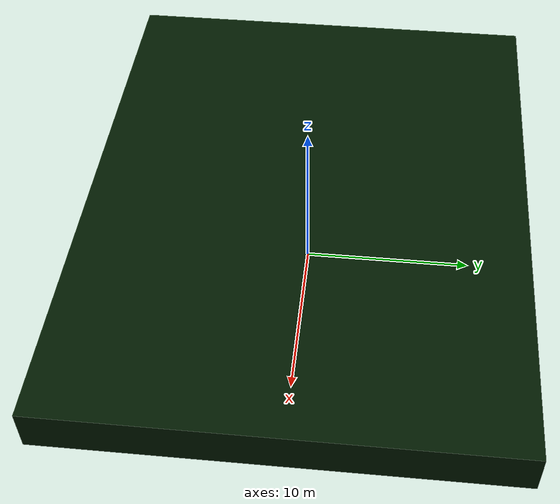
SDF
<?xml version="1.0" ?>
<sdf version="1.6">
  <model name="Road Side">
    <static>true</static>
    <link name="link">
      <collision name="collision">
        <geometry>
          <mesh>
            <uri>model://road_side/meshes/road_side.dae</uri>
            <scale>1 7 15</scale>
          </mesh>
        </geometry>
      </collision>
      <visual name="visual">
        <geometry>
          <mesh>
            <uri>model://road_side/meshes/road_side.dae</uri>
            <scale>1 7 15</scale>
          </mesh>
        </geometry>
        <material> <!-- Wheel material -->
          <ambient>0.0 0.0 0.1 1</ambient>
          <diffuse>0.0 0.1 0.0 1</diffuse>
          <specular>0 0 0 0</specular>
          <emissive>0 0 0 1</emissive>
        </material> <!-- End wheel material -->
      </visual>
    </link>
  </model>
</sdf>
